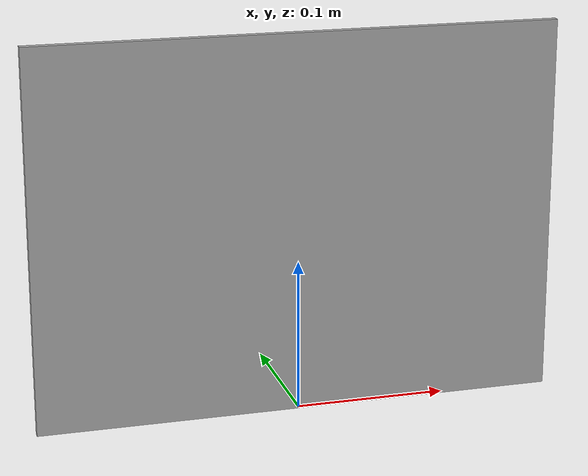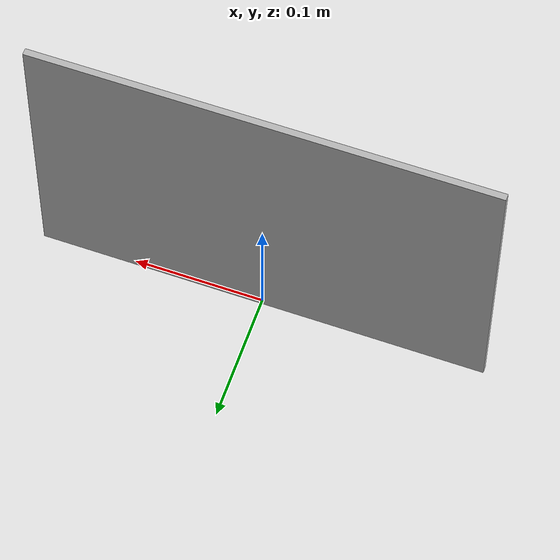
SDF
<?xml version="1.0"?>
<sdf version="1.6">
  <model name="vehicle_board">
    <static>true</static>
    <pose>0 0 0.125 0 0 0</pose>
    <link name="board">
      <collision name="collision"><geometry><box><size>0.345 0.005 0.25</size></box></geometry></collision>
      <visual name="visual">
        <geometry><box><size>0.345 0.005 0.25</size></box></geometry>
        <material>
          <script>
            <uri>model://vehicle_board/materials/scripts</uri>
            <uri>model://vehicle_board/materials/textures</uri>
            <name>vehicle_board</name>
          </script>
        </material>
      </visual>
    </link>
  </model>
</sdf>
